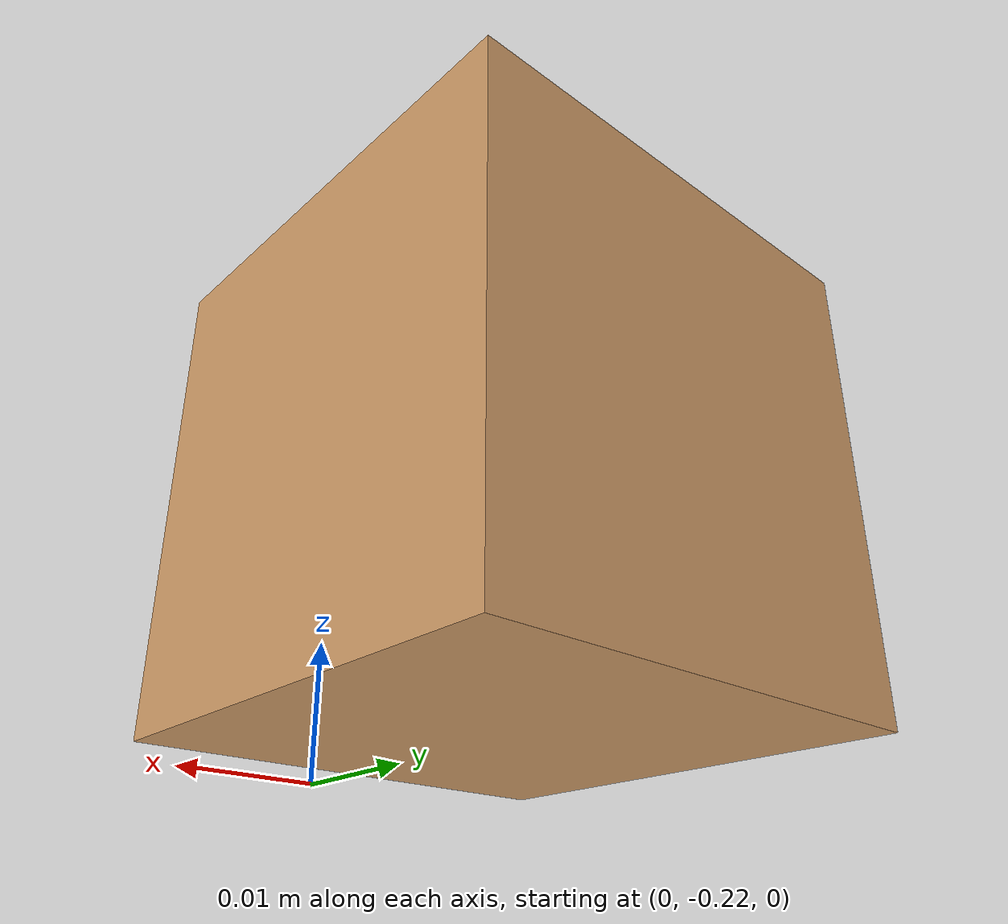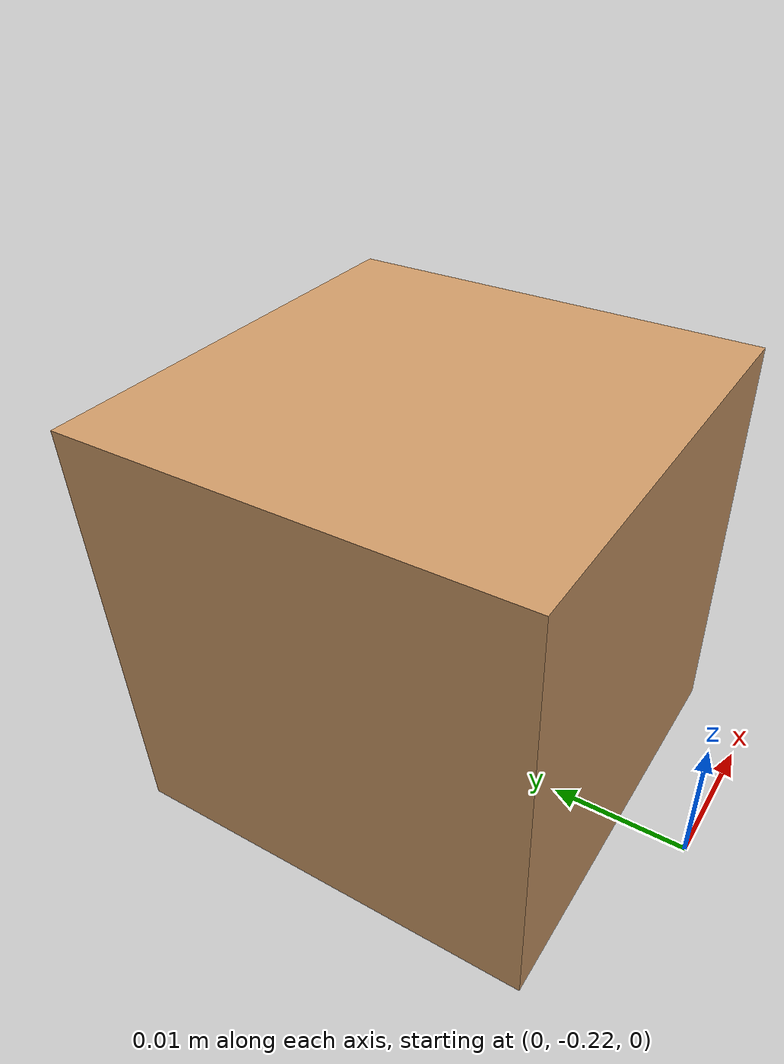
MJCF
<mujoco model="cube">
  <worldbody>
    <body name="cube" pos="0.0 -0.2 0.015">
      <freejoint/>
      <geom name="cube" type="box" mass="0.01" rgba="0.8 0.6 0.4 1" condim="4" solimp="2 1 0.01" solref="0.01 1" friction="3 0.05 0.01" pos="0 0 0" size="0.015 0.015 0.015" group="0"/>
    </body>
  </worldbody>
</mujoco>
